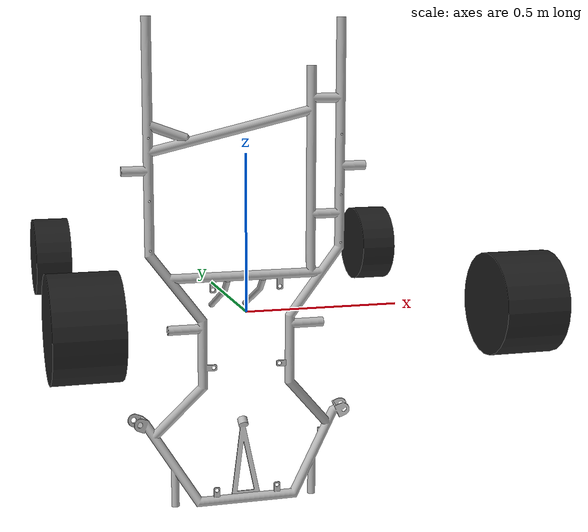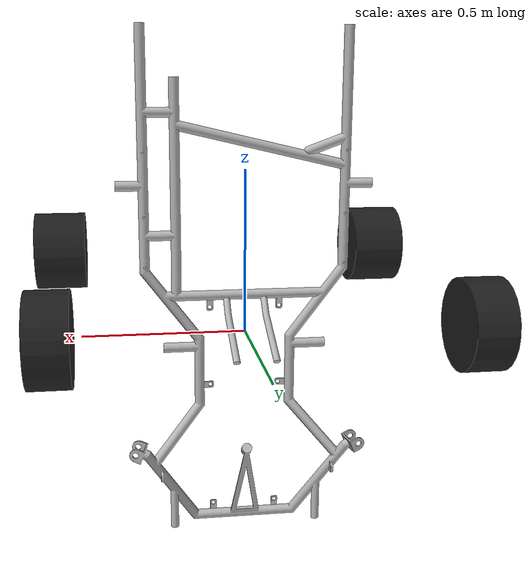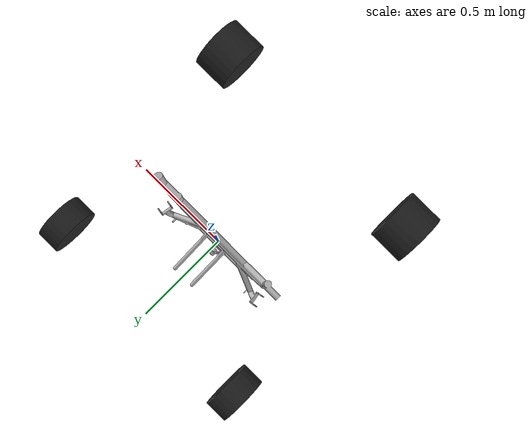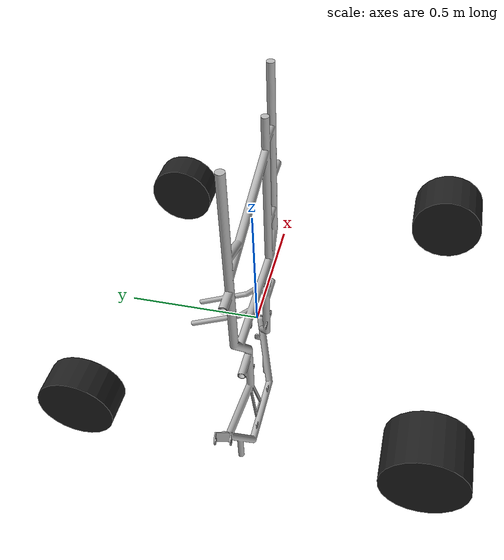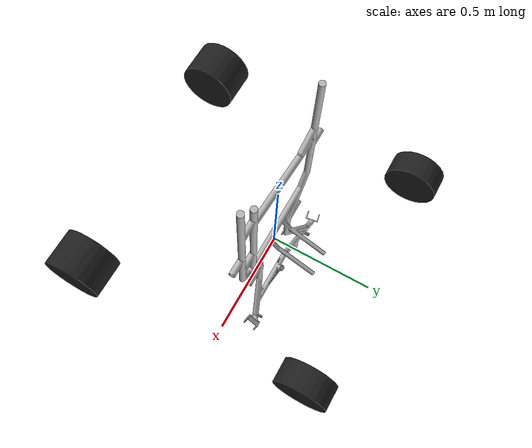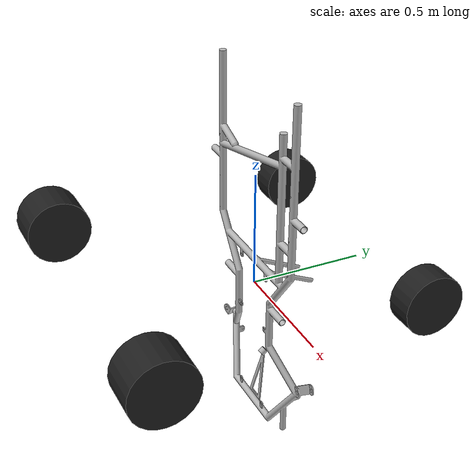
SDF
<sdf version='1.6'>
  <model name='kart'>
    <link name='base_link'>
      <pose>0 0 0.15 0 -0 0</pose>
      <inertial>
        <pose>0 0 0 0 -0 0</pose>
        <mass>20.0</mass>
        <inertia>
          <ixx>0.37083</ixx>
          <ixy>0.0</ixy>
          <ixz>0.0</ixz>
          <iyy>0.37083</iyy>
          <iyz>0.0</iyz>
          <izz>0.53333</izz>
        </inertia>
      </inertial>
      <collision name='odom_fixed_joint_lump__base_link_collision'>
        <pose>0 0 0 0 -0 0</pose>
        <geometry>
          <box>
            <size>1.0 1.35 0.03</size>
          </box>
        </geometry>
        <surface>
          <contact>
            <ode/>
          </contact>
          <friction>
            <ode/>
          </friction>
        </surface>
      </collision>
      <visual name='base_link_visual'>
        <pose>0 0 0 0 -0 0</pose>
        <geometry>
          <mesh>
            <uri>model://kart/meshes/chassis.obj</uri>
          </mesh>
        </geometry>
        <surface>
          <contact>
            <ode/>
          </contact>
          <friction>
              <ode/>
          </friction>
        </surface>
      </visual>
    </link>
    <link name='lb_wheel_link'>
      <pose>-0.59017 -0.675 0.1397 0 -0 0</pose>
      <inertial>
        <pose>0 0 0 1.57079632679 0 1.57079632679</pose>
        <mass>0.414</mass>
        <inertia>
          <ixx>0.00068682</ixx>
          <ixy>0</ixy>
          <ixz>0</ixz>
          <iyy>0.00068682</iyy>
          <iyz>0</iyz>
          <izz>0.00097299</izz>
        </inertia>
      </inertial>
      <collision name='lb_wheel_link_collision'>
        <pose>0 0 0 1.57079632679 0 1.57079632679</pose>
        <geometry>
          <cylinder>
            <radius>0.1397</radius>
            <length>0.18034</length>
          </cylinder>
        </geometry>
        <max_contacts>1</max_contacts>
        <surface>
          <friction>
            <torsional>
              <coefficient>0.25</coefficient>
              <use_patch_radius>1</use_patch_radius>
              <surface_radius>0.0686</surface_radius>
            </torsional>
            <ode>
              <mu>1.0</mu>
              <mu2>0.45</mu2>
              <fdir1>1 0 0</fdir1>
              <slip1>0.0</slip1>
              <slip2>0.0</slip2>
            </ode>
          </friction>
          <bounce>
            <restitution_coefficient>0</restitution_coefficient>
            <threshold>1e6</threshold>
          </bounce>
          <contact>
            <ode>
              <min_depth>0.001</min_depth>
              <max_vel>0.0</max_vel>
              <kp>1.0e6</kp>
              <kd>100.0</kd>
            </ode>
          </contact>
        </surface>
      </collision>
      <visual name='lb_wheel_link_visual'>
        <pose>0 0 0 1.57079632679 0 1.57079632679</pose>
        <geometry>
          <cylinder>
            <radius>0.1397</radius>
            <length>0.18034</length>
          </cylinder>
        </geometry>
        <material>
          <script>
            <name>Gazebo/FlatBlack</name>
            <uri>file://media/materials/scripts/gazebo.material</uri>
          </script>
        </material>
      </visual>
      <gravity>1</gravity>
      <velocity_decay/>
    </link>
    <joint name='lb_wheel_joint' type='revolute'>
      <child>lb_wheel_link</child>
      <parent>base_link</parent>
      <axis>
        <xyz>1 0 0</xyz>
        <dynamics>
          <spring_reference>0</spring_reference>
          <spring_stiffness>0</spring_stiffness>
        </dynamics>
        <use_parent_model_frame>1</use_parent_model_frame>
      </axis>
    </joint>
    <link name='lf_wheel_link'>
      <pose>-0.5635 0.453 0.127 0 -0 0</pose>
      <inertial>
        <pose>0 0 0 1.57079632679 0 1.57079632679</pose>
        <mass>0.414</mass>
        <inertia>
          <ixx>0.00068682</ixx>
          <ixy>0</ixy>
          <ixz>0</ixz>
          <iyy>0.00068682</iyy>
          <iyz>0</iyz>
          <izz>0.00097299</izz>
        </inertia>
      </inertial>
      <collision name='lf_wheel_link_collision'>
        <pose>0 0 0 1.57079632679 0 1.57079632679</pose>
        <geometry>
          <cylinder>
            <radius>0.127</radius>
            <length>0.1143</length>
          </cylinder>
        </geometry>
        <max_contacts>1</max_contacts>
        <surface>
          <friction>
            <torsional>
              <coefficient>0.25</coefficient>
              <use_patch_radius>1</use_patch_radius>
              <surface_radius>0.0686</surface_radius>
            </torsional>
            <ode>
              <mu>1.0</mu>
              <mu2>0.45</mu2>
              <fdir1>1 0 0</fdir1>
              <slip1>0.0</slip1>
              <slip2>0.0</slip2>
            </ode>
          </friction>
          <bounce>
            <restitution_coefficient>0</restitution_coefficient>
            <threshold>1e6</threshold>
          </bounce>
          <contact>
            <ode>
              <min_depth>0.001</min_depth>
              <max_vel>0.0</max_vel>
              <kp>1.0e6</kp>
              <kd>100.0</kd>
            </ode>
          </contact>
        </surface>
      </collision>
      <visual name='lf_wheel_link_visual'>
        <pose>0 0 0 1.57079632679 0 1.57079632679</pose>
        <geometry>
          <cylinder>
            <radius>0.127</radius>
            <length>0.1143</length>
          </cylinder>
        </geometry>
        <material>
          <script>
            <name>Gazebo/FlatBlack</name>
            <uri>file://media/materials/scripts/gazebo.material</uri>
          </script>
        </material>
      </visual>
      <gravity>1</gravity>
      <velocity_decay/>
    </link>
    <link name="lf_steering_block">
      <pose>-0.5635 0.65 0.127 1.570796 0 0 </pose>
      <inertial>
        <mass>1</mass>
        <inertia>
          <ixx>0.01</ixx>
          <ixy>0.0</ixy>
          <iyy>0.01</iyy>
          <ixz>0.0</ixz>
          <iyz>0.0</iyz>
          <izz>0.01</izz>
        </inertia>
      </inertial>
      <collision name="collision">
        <geometry>
          <cylinder>
            <radius>0.05</radius>
            <length>0.01</length>
          </cylinder>
        </geometry>
      </collision>
    </link>
    <joint type="revolute" name="lf_steering_joint">
      <child>lf_steering_block</child>
      <parent>base_link</parent>
      <axis>
        <xyz>0 0 1</xyz>
        <limit>
          <lower>-0.7727</lower>
          <upper>0.7727</upper>
        </limit>
        <dynamics>
          <damping>50.0</damping>
        </dynamics>
        <use_parent_model_frame>true</use_parent_model_frame>
      </axis>
      <physics>
        <ode>
          <cfm_damping>1</cfm_damping>
          <limit>
            <cfm>0.000000</cfm>
            <erp>0.900000</erp>
          </limit>
        </ode>
      </physics>
    </joint>
    <joint name='lf_wheel_joint' type='revolute'>
      <child>lf_wheel_link</child>
      <parent>lf_steering_block</parent>
      <axis>
        <xyz>1 0 0</xyz>
        <use_parent_model_frame>1</use_parent_model_frame>
      </axis>
    </joint>
    <link name='rb_wheel_link'>
      <pose>0.59017 -0.675 0.1397 0 -0 0</pose>
      <inertial>
        <pose>0 0 0 1.57079632679 0 1.57079632679</pose>
        <mass>0.414</mass>
        <inertia>
          <ixx>0.00068682</ixx>
          <ixy>0</ixy>
          <ixz>0</ixz>
          <iyy>0.00068682</iyy>
          <iyz>0</iyz>
          <izz>0.00097299</izz>
        </inertia>
      </inertial>
      <collision name='rb_wheel_link_collision'>
        <pose>0 0 0 1.57079632679 0 1.57079632679</pose>
        <geometry>
          <cylinder>
            <radius>0.1397</radius>
            <length>0.18034</length>
          </cylinder>
        </geometry>
        <max_contacts>1</max_contacts>
        <surface>
          <friction>
            <torsional>
              <coefficient>0.25</coefficient>
              <use_patch_radius>1</use_patch_radius>
              <surface_radius>0.0686</surface_radius>
            </torsional>
            <ode>
              <mu>1.0</mu>
              <mu2>0.45</mu2>
              <fdir1>1 0 0</fdir1>
              <slip1>0.0</slip1>
              <slip2>0.0</slip2>
            </ode>
          </friction>
          <bounce>
            <restitution_coefficient>0</restitution_coefficient>
            <threshold>1e6</threshold>
          </bounce>
          <contact>
            <ode>
              <min_depth>0.001</min_depth>
              <kp>1e8</kp>
            </ode>
          </contact>
        </surface>
      </collision>
      <visual name='rb_wheel_link_visual'>
        <pose>0 0 0 1.57079632679 0 1.57079632679</pose>
        <geometry>
          <cylinder>
            <radius>0.1397</radius>
            <length>0.18034</length>
          </cylinder>
        </geometry>
        <material>
          <script>
            <name>Gazebo/FlatBlack</name>
            <uri>file://media/materials/scripts/gazebo.material</uri>
          </script>
        </material>
      </visual>
      <gravity>1</gravity>
      <velocity_decay/>
    </link>
    <joint name='rb_wheel_joint' type='revolute'>
      <child>rb_wheel_link</child>
      <parent>base_link</parent>
      <axis>
        <xyz>1 0 0</xyz>
        <dynamics>
          <spring_reference>0</spring_reference>
          <spring_stiffness>0</spring_stiffness>
        </dynamics>
        <use_parent_model_frame>1</use_parent_model_frame>
      </axis>
    </joint>
    <link name='rf_wheel_link'>
      <pose>0.5635 0.453 0.127 0 -0 0</pose>
      <inertial>
        <pose>0 0 0 1.57079632679 0 1.57079632679</pose>
        <mass>0.414</mass>
        <inertia>
          <ixx>0.00068682</ixx>
          <ixy>0</ixy>
          <ixz>0</ixz>
          <iyy>0.00068682</iyy>
          <iyz>0</iyz>
          <izz>0.00097299</izz>
        </inertia>
      </inertial>
      <collision name='rf_wheel_link_collision'>
        <pose>0 0 0 1.57079632679 0 1.57079632679</pose>
        <geometry>
          <cylinder>
            <radius>0.127</radius>
            <length>0.1143</length>
          </cylinder>
        </geometry>
        <max_contacts>1</max_contacts>
        <surface>
          <friction>
            <torsional>
              <coefficient>0.25</coefficient>
              <use_patch_radius>1</use_patch_radius>
              <surface_radius>0.0686</surface_radius>
            </torsional>
            <ode>
              <mu>1.0</mu>
              <mu2>0.45</mu2>
              <fdir1>1 0 0</fdir1>
              <slip1>0.0</slip1>
              <slip2>0.0</slip2>
            </ode>
          </friction>
          <bounce>
            <restitution_coefficient>0</restitution_coefficient>
            <threshold>1e6</threshold>
          </bounce>
          <contact>
            <ode>
              <min_depth>0.001</min_depth>
              <max_vel>0.0</max_vel>
              <kp>1.0e6</kp>
              <kd>100.0</kd>
            </ode>
          </contact>
        </surface>
      </collision>
      <visual name='rf_wheel_link_visual'>
        <pose>0 0 0 1.57079632679 0 1.57079632679</pose>
        <geometry>
          <cylinder>
            <radius>0.127</radius>
            <length>0.1143</length>
          </cylinder>
        </geometry>
        <material>
          <script>
            <name>Gazebo/FlatBlack</name>
            <uri>file://media/materials/scripts/gazebo.material</uri>
          </script>
        </material>
      </visual>
      <gravity>1</gravity>
      <velocity_decay/>
    </link>
    <link name="rf_wheel_steering_block">
      <pose>0.5635 0.65 0.127 1.570796 0.0 0.0</pose>
      <inertial>
        <mass>1</mass>
        <inertia>
          <ixx>0.01</ixx>
          <ixy>0.0</ixy>
          <iyy>0.01</iyy>
          <ixz>0.0</ixz>
          <iyz>0.0</iyz>
          <izz>0.01</izz>
        </inertia>
      </inertial>
      <collision name="collision">
        <geometry>
          <cylinder>
            <radius>0.05</radius>
            <length>0.01</length>
          </cylinder>
        </geometry>
      </collision>
    </link>
    <joint type="revolute" name="rf_steering_joint">
      <child>rf_wheel_steering_block</child>
      <parent>base_link</parent>
      <axis>
        <xyz>0 0 1</xyz>
        <limit>
          <lower>-0.7727</lower>
          <upper>0.7727</upper>
        </limit>
        <dynamics>
          <damping>50.0</damping>
        </dynamics>
        <use_parent_model_frame>true</use_parent_model_frame>
      </axis>
      <physics>
        <ode>
          <cfm_damping>1</cfm_damping>
          <limit>
            <cfm>0.000000</cfm>
            <erp>0.900000</erp>
          </limit>
        </ode>
      </physics>
    </joint>
    <joint name='rf_wheel_joint' type='revolute'>
      <child>rf_wheel_link</child>
      <parent>rf_wheel_steering_block</parent>
      <axis>
        <xyz>1 0 0</xyz>
        <use_parent_model_frame>1</use_parent_model_frame>
      </axis>
    </joint>
    <static>0</static>
    <link name='rover/imu_link'>
      <pose>0 0 .2 0 0 0</pose>
      <inertial>
        <pose>0 0 0 0 0 0</pose>
        <mass>0.015</mass>
        <inertia>
          <ixx>1e-05</ixx>
          <ixy>0</ixy>
          <ixz>0</ixz>
          <iyy>1e-05</iyy>
          <iyz>0</iyz>
          <izz>1e-05</izz>
        </inertia>
      </inertial>
      <!--uncomment visual block to see IMU-->
    </link>
    <joint name='rover/imu_joint' type='revolute'>
      <child>rover/imu_link</child>
      <parent>base_link</parent>
      <axis>
        <xyz>1 0 0</xyz>
        <limit>
          <lower>0</lower>
          <upper>0</upper>
          <effort>0</effort>
          <velocity>0</velocity>
        </limit>
        <dynamics>
          <spring_reference>0</spring_reference>
          <spring_stiffness>0</spring_stiffness>
        </dynamics>
        <use_parent_model_frame>1</use_parent_model_frame>
      </axis>
    </joint>
    <include>
      <uri>model://gps</uri>
      <pose>0 0 0.12 0 0 0</pose>
      <name>gps</name>
    </include>
    <joint name='gps_joint' type='fixed'>
      <child>gps::link</child>
      <parent>base_link</parent>
    </joint>
    <plugin name='gazebo_imu_plugin' filename='libgazebo_imu_plugin.so'>
      <robotNamespace></robotNamespace>
      <linkName>rover/imu_link</linkName>
      <imuTopic>/imu</imuTopic>
      <gyroscopeNoiseDensity>0.0003394</gyroscopeNoiseDensity>
      <gyroscopeRandomWalk>3.8785e-05</gyroscopeRandomWalk>
      <gyroscopeBiasCorrelationTime>1000.0</gyroscopeBiasCorrelationTime>
      <gyroscopeTurnOnBiasSigma>0.0087</gyroscopeTurnOnBiasSigma>
      <accelerometerNoiseDensity>0.004</accelerometerNoiseDensity>
      <accelerometerRandomWalk>0.006</accelerometerRandomWalk>
      <accelerometerBiasCorrelationTime>300.0</accelerometerBiasCorrelationTime>
      <accelerometerTurnOnBiasSigma>0.196</accelerometerTurnOnBiasSigma>
    </plugin>
    <plugin name='groundtruth_plugin' filename='libgazebo_groundtruth_plugin.so'>
      <robotNamespace/>
    </plugin>
    <plugin name='magnetometer_plugin' filename='libgazebo_magnetometer_plugin.so'>
      <robotNamespace/>
      <pubRate>20</pubRate>
      <noiseDensity>0.0004</noiseDensity>
      <randomWalk>6.4e-06</randomWalk>
      <biasCorrelationTime>600</biasCorrelationTime>
      <magTopic>/mag</magTopic>
    </plugin>
    <plugin name='barometer_plugin' filename='libgazebo_barometer_plugin.so'>
      <robotNamespace/>
      <pubRate>10</pubRate>
      <baroTopic>/baro</baroTopic>
      <barometerNoiseDensity>0.004</barometerNoiseDensity>
      <barometerRandomWalk>0.006</barometerRandomWalk>
    </plugin>
    <plugin name='mavlink_interface' filename='libgazebo_mavlink_interface.so'>
      <robotNamespace></robotNamespace>
      <imuSubTopic>/imu</imuSubTopic>
      <magSubTopic>/mag</magSubTopic>
      <baroSubTopic>/baro</baroSubTopic>
      <gpsSubTopic>/gps</gpsSubTopic>
      <mavlink_addr>INADDR_ANY</mavlink_addr>
      <mavlink_tcp_port>4560</mavlink_tcp_port>
      <mavlink_udp_port>14560</mavlink_udp_port>
      <serialEnabled>false</serialEnabled>
      <serialDevice>/dev/ttyACM0</serialDevice>
      <baudRate>921600</baudRate>
      <qgc_addr>INADDR_ANY</qgc_addr>
      <qgc_udp_port>14550</qgc_udp_port>
      <sdk_addr>INADDR_ANY</sdk_addr>
      <sdk_udp_port>14540</sdk_udp_port>
      <hil_mode>false</hil_mode>
      <hil_state_level>false</hil_state_level>
      <enable_lockstep>true</enable_lockstep>
      <use_tcp>true</use_tcp>
      <motorSpeedCommandPubTopic>/gazebo/command/motor_speed</motorSpeedCommandPubTopic>
      <control_channels>
        <channel name="rear_left_wheel_drive">
          <input_index>5</input_index>
          <input_offset>0</input_offset>
          <input_scaling>40</input_scaling>
          <zero_position_disarmed>0</zero_position_disarmed>
          <zero_position_armed>0</zero_position_armed>
          <joint_control_type>velocity</joint_control_type>
          <joint_name>lb_wheel_joint</joint_name>
          <joint_control_pid>
            <p>50</p>
            <i>20</i>
            <d>2</d>
            <iMax>800</iMax>
            <iMin>-800</iMin>
            <cmdMax>1200</cmdMax>
            <cmdMin>-1200</cmdMin>
          </joint_control_pid>
        </channel>
        <channel name="rear_right_wheel_drive">
          <input_index>6</input_index>
          <input_offset>0</input_offset>
          <input_scaling>40</input_scaling>
          <zero_position_disarmed>0</zero_position_disarmed>
          <zero_position_armed>0</zero_position_armed>
          <joint_control_type>velocity</joint_control_type>
          <joint_name>rb_wheel_joint</joint_name>
          <joint_control_pid>
            <p>50</p>
            <i>20</i>
            <d>2</d>
            <iMax>800</iMax>
            <iMin>-800</iMin>
            <cmdMax>1200</cmdMax>
            <cmdMin>-1200</cmdMin>
          </joint_control_pid>
        </channel>
        <channel name="left_wheel_steering">
          <input_index>0</input_index>
          <input_offset>0</input_offset>
          <input_scaling>-0.9</input_scaling>
          <zero_position_disarmed>0</zero_position_disarmed>
          <zero_position_armed>0</zero_position_armed>
          <joint_control_type>position</joint_control_type>
          <joint_name>lf_steering_joint</joint_name>
          <joint_control_pid>
            <p>80</p>
            <i>40</i>
            <d>0.1</d>
            <iMax>40</iMax>
            <iMin>-40</iMin>
            <cmdMax>80</cmdMax>
            <cmdMin>-80</cmdMin>
          </joint_control_pid>
        </channel>
        <channel name="right_wheel_steering">
          <input_index>1</input_index>
          <input_offset>0</input_offset>
          <input_scaling>-0.9</input_scaling>
          <zero_position_disarmed>0</zero_position_disarmed>
          <zero_position_armed>0</zero_position_armed>
          <joint_control_type>position</joint_control_type>
          <joint_name>rf_steering_joint</joint_name>
          <joint_control_pid>
            <p>80</p>
            <i>40</i>
            <d>0.1</d>
            <iMax>40</iMax>
            <iMin>-40</iMin>
            <cmdMax>80</cmdMax>
            <cmdMin>-80</cmdMin>
          </joint_control_pid>
        </channel>
      </control_channels>
    </plugin>
  </model>
</sdf>

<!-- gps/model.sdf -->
<sdf version="1.6">
  <model name="gps">
    <link name="link">
      <pose>0 0 0 0 0 0</pose>
      <inertial>
        <pose>0 0 0 0 0 0</pose>
        <mass>0.015</mass>
        <inertia>
          <ixx>1e-05</ixx>
          <ixy>0</ixy>
          <ixz>0</ixz>
          <iyy>1e-05</iyy>
          <iyz>0</iyz>
          <izz>1e-05</izz>
        </inertia>
      </inertial>
      <visual name="visual">
        <geometry>
          <cylinder>
            <radius>0.01</radius>
            <length>0.002</length>
          </cylinder>
        </geometry>
        <material>
          <script>
            <name>Gazebo/Black</name>
            <uri>file://usr/share/gz/gz-sim8/media/gazebo.material</uri>
          </script>
        </material>
      </visual>
      <sensor name="gps" type="gps">
        <pose>0 0 0 0 0 0</pose>
        <update_rate>5.0</update_rate>
        <always_on>true</always_on>
        <visualize>false</visualize>
        <!-- GpsSensor noise currently not used -->
        <plugin name="gps_plugin" filename="libgazebo_gps_plugin.so">
          <robotNamespace></robotNamespace>
          <gpsNoise>true</gpsNoise>
          <gpsXYRandomWalk>2.0</gpsXYRandomWalk>
          <gpsZRandomWalk>4.0</gpsZRandomWalk>
          <gpsXYNoiseDensity>2.0e-4</gpsXYNoiseDensity>
          <gpsZNoiseDensity>4.0e-4</gpsZNoiseDensity>
          <gpsVXYNoiseDensity>0.2</gpsVXYNoiseDensity>
          <gpsVZNoiseDensity>0.4</gpsVZNoiseDensity>
        </plugin>
      </sensor>
    </link>
  </model>
</sdf>
